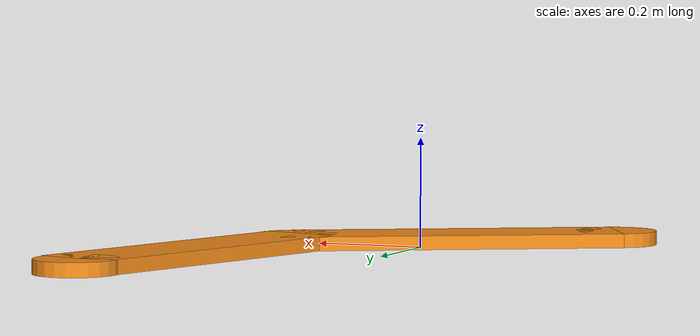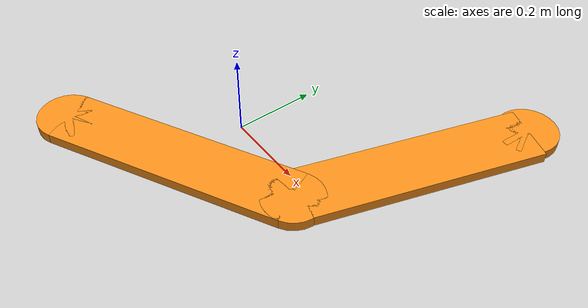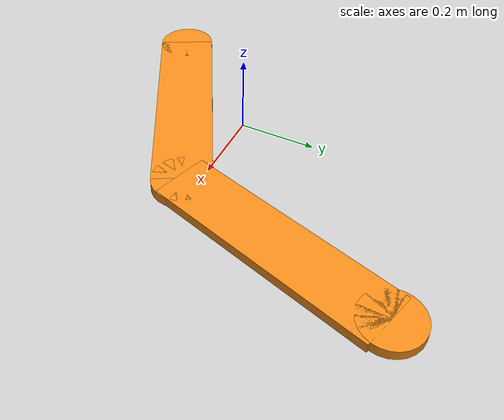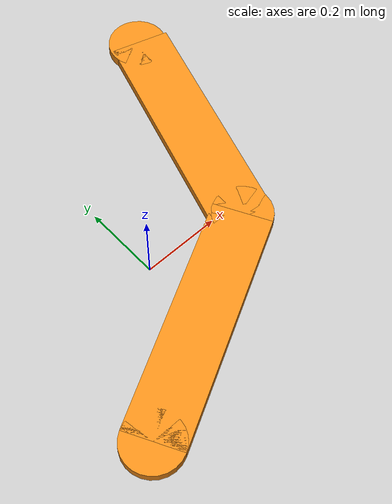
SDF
<?xml version='1.0'?>
<sdf version='1.6'>
  <model name='path_markers'>
    <link name='link_0_clone'>
      <pose frame=''>-0.005961 -0.180662 0 0 0 -1.08343</pose>
      <self_collide>0</self_collide>
      <enable_wind>0</enable_wind>
      <kinematic>0</kinematic>
      <gravity>1</gravity>
      <inertial>
        <mass>1</mass>
        <pose frame=''>0 0 0 0 -0 0</pose>
        <inertia>
          <ixx>1</ixx>
          <ixy>0</ixy>
          <ixz>0</ixz>
          <iyy>1</iyy>
          <iyz>0</iyz>
          <izz>1</izz>
        </inertia>
      </inertial>
      <visual name='ModelPreview_1::link_0_clone::visual_4'>
        <pose frame=''>0 0.3048 0 0 -0 0</pose>
        <geometry>
          <cylinder>
            <radius>0.0762</radius>
            <length>0.026174</length>
          </cylinder>
        </geometry>
        <material>
          <script>
            <uri>file://media/materials/scripts/gazebo.material</uri>
            <name>Gazebo/Orange</name>
          </script>
          <shader type='vertex'>
            <normal_map>__default__</normal_map>
          </shader>
          <ambient>1 0.509 0.047 1</ambient>
          <diffuse>1 0.509 0.047 1</diffuse>
          <specular>0.5 0.5 0.5 1</specular>
          <emissive>0 0 0 1</emissive>
        </material>
        <transparency>0</transparency>
        <cast_shadows>1</cast_shadows>
      </visual>
      <visual name='ModelPreview_1::link_0_clone::visual_3'>
        <pose frame=''>0 -0.3048 0 0 -0 0</pose>
        <geometry>
          <cylinder>
            <radius>0.0762</radius>
            <length>0.026174</length>
          </cylinder>
        </geometry>
        <material>
          <script>
            <uri>file://media/materials/scripts/gazebo.material</uri>
            <name>Gazebo/Orange</name>
          </script>
          <shader type='vertex'>
            <normal_map>__default__</normal_map>
          </shader>
          <ambient>1 0.509 0.047 1</ambient>
          <diffuse>1 0.509 0.047 1</diffuse>
          <specular>0.5 0.5 0.5 1</specular>
          <emissive>0 0 0 1</emissive>
        </material>
        <transparency>0</transparency>
        <cast_shadows>1</cast_shadows>
      </visual>
      <visual name='ModelPreview_1::link_0_clone::visual_5'>
        <pose frame=''>-0.43 0.72 0 0 -0 0</pose>
        <geometry>
          <cylinder>
            <radius>0.0762</radius>
            <length>0.026174</length>
          </cylinder>
        </geometry>
        <material>
          <script>
            <uri>file://media/materials/scripts/gazebo.material</uri>
            <name>Gazebo/Orange</name>
          </script>
          <shader type='vertex'>
            <normal_map>__default__</normal_map>
          </shader>
          <ambient>1 0.509 0.047 1</ambient>
          <diffuse>1 0.509 0.047 1</diffuse>
          <specular>0.5 0.5 0.5 1</specular>
          <emissive>0 0 0 1</emissive>
        </material>
        <transparency>0</transparency>
        <cast_shadows>1</cast_shadows>
      </visual>
      <visual name='ModelPreview_1::link_0_clone::visual_1'>
        <pose frame=''>-0.21 0.5096 0 0 0 -2.3562</pose>
        <geometry>
          <box>
            <size>0.1524 0.6096 0.026174</size>
          </box>
        </geometry>
        <material>
          <script>
            <uri>file://media/materials/scripts/gazebo.material</uri>
            <name>Gazebo/Orange</name>
          </script>
          <shader type='vertex'>
            <normal_map>__default__</normal_map>
          </shader>
          <ambient>1 0.509 0.047 1</ambient>
          <diffuse>1 0.509 0.047 1</diffuse>
          <specular>0.5 0.5 0.5 1</specular>
          <emissive>0 0 0 1</emissive>
        </material>
        <transparency>0</transparency>
        <cast_shadows>1</cast_shadows>
      </visual>
      <visual name='visual'>
        <pose frame=''>0 0 0 0 -0 0</pose>
        <geometry>
          <box>
            <size>0.1524 0.6096 0.026174</size>
          </box>
        </geometry>
        <material>
          <script>
            <uri>file://media/materials/scripts/gazebo.material</uri>
            <name>Gazebo/Orange</name>
          </script>
          <shader type='vertex'>
            <normal_map>__default__</normal_map>
          </shader>
          <ambient>1 0.509 0.047 1</ambient>
          <diffuse>1 0.509 0.047 1</diffuse>
          <specular>0.5 0.5 0.5 1</specular>
          <emissive>0 0 0 1</emissive>
        </material>
        <transparency>0</transparency>
        <cast_shadows>1</cast_shadows>
      </visual>
      <collision name='collision'>
        <laser_retro>0</laser_retro>
        <max_contacts>10</max_contacts>
        <pose frame=''>0 0 0 0 -0 0</pose>
        <geometry>
          <box>
            <size>0.1524 0.6096 0.026174</size>
          </box>
        </geometry>
        <surface>
          <friction>
            <ode>
              <mu>1</mu>
              <mu2>1</mu2>
              <fdir1>0 0 0</fdir1>
              <slip1>0</slip1>
              <slip2>0</slip2>
            </ode>
            <torsional>
              <coefficient>1</coefficient>
              <patch_radius>0</patch_radius>
              <surface_radius>0</surface_radius>
              <use_patch_radius>1</use_patch_radius>
              <ode>
                <slip>0</slip>
              </ode>
            </torsional>
          </friction>
          <bounce>
            <restitution_coefficient>0</restitution_coefficient>
            <threshold>1e+06</threshold>
          </bounce>
          <contact>
            <collide_without_contact>0</collide_without_contact>
            <collide_without_contact_bitmask>1</collide_without_contact_bitmask>
            <collide_bitmask>1</collide_bitmask>
            <ode>
              <soft_cfm>0</soft_cfm>
              <soft_erp>0.2</soft_erp>
              <kp>1e+13</kp>
              <kd>1</kd>
              <max_vel>0.01</max_vel>
              <min_depth>0</min_depth>
            </ode>
            <bullet>
              <split_impulse>1</split_impulse>
              <split_impulse_penetration_threshold>-0.01</split_impulse_penetration_threshold>
              <soft_cfm>0</soft_cfm>
              <soft_erp>0.2</soft_erp>
              <kp>1e+13</kp>
              <kd>1</kd>
            </bullet>
          </contact>
        </surface>
      </collision>
      <collision name='collision_1'>
        <laser_retro>0</laser_retro>
        <max_contacts>10</max_contacts>
        <pose frame=''>-0.25 0.6096 0 0 0 -2.3562</pose>
        <geometry>
          <box>
            <size>0.1524 0.6096 0.026174</size>
          </box>
        </geometry>
        <surface>
          <friction>
            <ode>
              <mu>1</mu>
              <mu2>1</mu2>
              <fdir1>0 0 0</fdir1>
              <slip1>0</slip1>
              <slip2>0</slip2>
            </ode>
            <torsional>
              <coefficient>1</coefficient>
              <patch_radius>0</patch_radius>
              <surface_radius>0</surface_radius>
              <use_patch_radius>1</use_patch_radius>
              <ode>
                <slip>0</slip>
              </ode>
            </torsional>
          </friction>
          <bounce>
            <restitution_coefficient>0</restitution_coefficient>
            <threshold>1e+06</threshold>
          </bounce>
          <contact>
            <collide_without_contact>0</collide_without_contact>
            <collide_without_contact_bitmask>1</collide_without_contact_bitmask>
            <collide_bitmask>1</collide_bitmask>
            <ode>
              <soft_cfm>0</soft_cfm>
              <soft_erp>0.2</soft_erp>
              <kp>1e+13</kp>
              <kd>1</kd>
              <max_vel>0.01</max_vel>
              <min_depth>0</min_depth>
            </ode>
            <bullet>
              <split_impulse>1</split_impulse>
              <split_impulse_penetration_threshold>-0.01</split_impulse_penetration_threshold>
              <soft_cfm>0</soft_cfm>
              <soft_erp>0.2</soft_erp>
              <kp>1e+13</kp>
              <kd>1</kd>
            </bullet>
          </contact>
        </surface>
      </collision>
    </link>
    <static>1</static>
    <allow_auto_disable>1</allow_auto_disable>
  </model>
</sdf>
